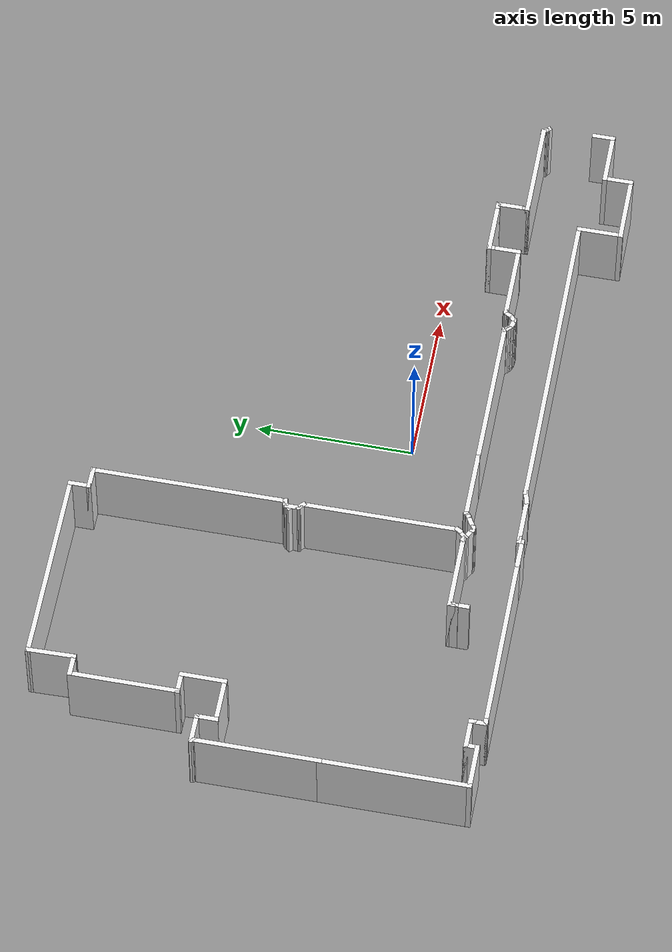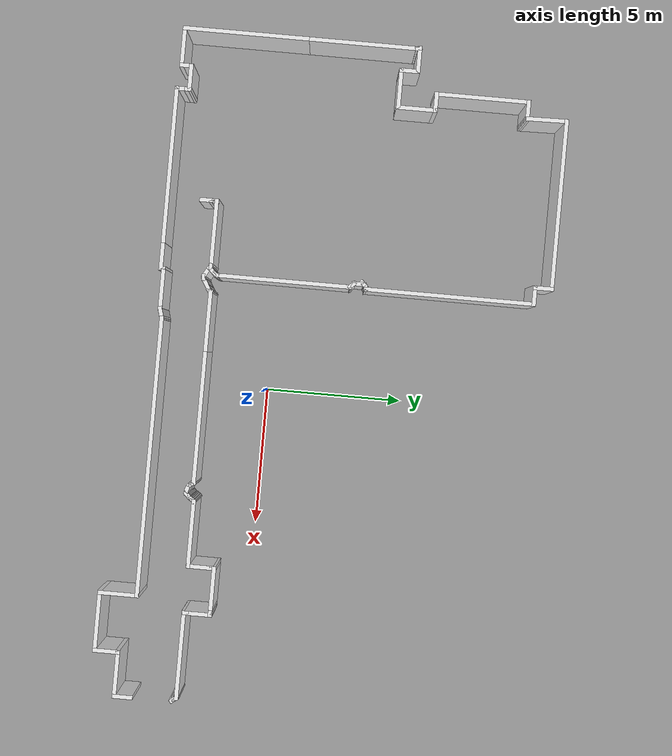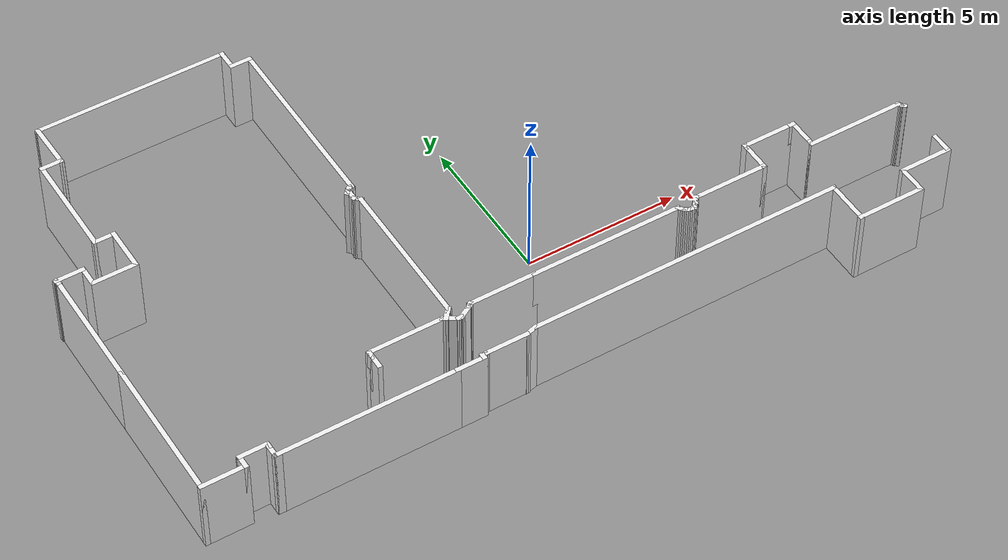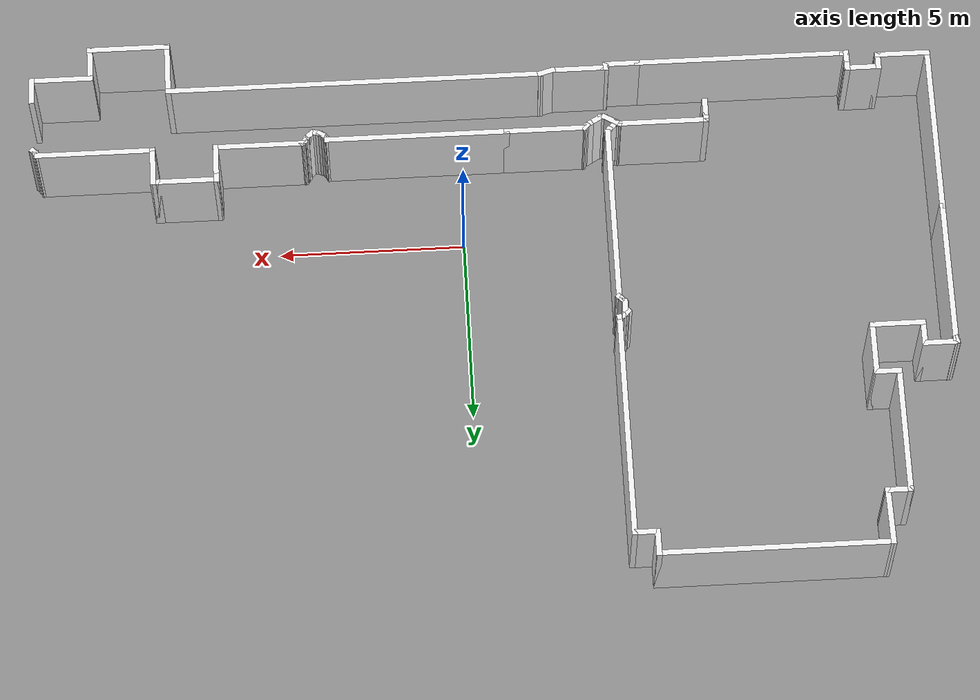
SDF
<sdf version="1.4">
 <model name="south_basement">
  <pose>12.3228 0.447268 0 0 -0 0</pose>
  <link name="Wall_1">
   <collision name="Wall_1_Collision">
    <geometry><box><size>6.25 0.15 2.5</size></box></geometry>
    <pose>0 0 1.25 0 -0 0</pose>
   </collision>
   <visual name="Wall_1_Visual">
    <pose>0 0 1.25 0 -0 0</pose>
    <geometry><box><size>6.25 0.15 2.5</size></box></geometry>
    <material>
     <script><uri>file://media/materials/scripts/gazebo.material</uri><name>Gazebo/White</name></script>
     <ambient>1 1 1 1</ambient>
    </material>
   </visual>
   <pose>-19.9496 9.58415 0 0 -0 0</pose>
  </link>
  <link name="Wall_10">
   <collision name="Wall_10_Collision">
    <geometry><box><size>0.25 0.15 2.5</size></box></geometry>
    <pose>0 0 1.25 0 -0 0</pose>
   </collision>
   <visual name="Wall_10_Visual">
    <pose>0 0 1.25 0 -0 0</pose>
    <geometry><box><size>0.25 0.15 2.5</size></box></geometry>
    <material>
     <script><uri>file://media/materials/scripts/gazebo.material</uri><name>Gazebo/White</name></script>
     <ambient>1 1 1 1</ambient>
    </material>
   </visual>
   <pose>-16.4315 2.82291 0 0 0 -2.35619</pose>
  </link>
  <link name="Wall_11">
   <collision name="Wall_11_Collision">
    <geometry><box><size>0.25 0.15 2.5</size></box></geometry>
    <pose>0 0 1.25 0 -0 0</pose>
   </collision>
   <visual name="Wall_11_Visual">
    <pose>0 0 1.25 0 -0 0</pose>
    <geometry><box><size>0.25 0.15 2.5</size></box></geometry>
    <material>
     <script><uri>file://media/materials/scripts/gazebo.material</uri><name>Gazebo/White</name></script>
     <ambient>1 1 1 1</ambient>
    </material>
   </visual>
   <pose>-16.5022 2.7522 0 0 0 -2.35619</pose>
  </link>
  <link name="Wall_14">
   <collision name="Wall_14_Collision">
    <geometry><box><size>0.5 0.15 2.5</size></box></geometry>
    <pose>0 0 1.25 0 -0 0</pose>
   </collision>
   <visual name="Wall_14_Visual">
    <pose>0 0 1.25 0 -0 0</pose>
    <geometry><box><size>0.5 0.15 2.5</size></box></geometry>
    <material>
     <script><uri>file://media/materials/scripts/gazebo.material</uri><name>Gazebo/White</name></script>
     <ambient>1 1 1 1</ambient>
    </material>
   </visual>
   <pose>-16.4669 2.61255 0 0 0 -1.5708</pose>
  </link>
  <link name="Wall_149">
   <collision name="Wall_149_Collision">
    <geometry><box><size>0.75 0.15 2.5</size></box></geometry>
    <pose>0 0 1.25 0 -0 0</pose>
   </collision>
   <visual name="Wall_149_Visual">
    <pose>0 0 1.25 0 -0 0</pose>
    <geometry><box><size>0.75 0.15 2.5</size></box></geometry>
    <material>
     <script><uri>file://media/materials/scripts/gazebo.material</uri><name>Gazebo/White</name></script>
     <ambient>1 1 1 1</ambient>
    </material>
   </visual>
   <pose>-0.806367 -4.60052 0 0 0 -1.5708</pose>
  </link>
  <link name="Wall_15">
   <collision name="Wall_15_Collision">
    <geometry><box><size>0.25 0.15 2.5</size></box></geometry>
    <pose>0 0 1.25 0 -0 0</pose>
   </collision>
   <visual name="Wall_15_Visual">
    <pose>0 0 1.25 0 -0 0</pose>
    <geometry><box><size>0.25 0.15 2.5</size></box></geometry>
    <material>
     <script><uri>file://media/materials/scripts/gazebo.material</uri><name>Gazebo/White</name></script>
     <ambient>1 1 1 1</ambient>
    </material>
   </visual>
   <pose>-16.4315 2.4022 0 0 0 -0.785398</pose>
  </link>
  <link name="Wall_150">
   <collision name="Wall_150_Collision">
    <geometry><box><size>1.75 0.15 2.5</size></box></geometry>
    <pose>0 0 1.25 0 -0 0</pose>
   </collision>
   <visual name="Wall_150_Visual">
    <pose>0 0 1.25 0 -0 0</pose>
    <geometry><box><size>1.75 0.15 2.5</size></box></geometry>
    <material>
     <script><uri>file://media/materials/scripts/gazebo.material</uri><name>Gazebo/White</name></script>
     <ambient>1 1 1 1</ambient>
    </material>
   </visual>
   <pose>-1.60637 -4.90052 0 0 -0 3.14159</pose>
  </link>
  <link name="Wall_151">
   <collision name="Wall_151_Collision">
    <geometry><box><size>1 0.15 2.5</size></box></geometry>
    <pose>0 0 1.25 0 -0 0</pose>
   </collision>
   <visual name="Wall_151_Visual">
    <pose>0 0 1.25 0 -0 0</pose>
    <geometry><box><size>1 0.15 2.5</size></box></geometry>
    <material>
     <script><uri>file://media/materials/scripts/gazebo.material</uri><name>Gazebo/White</name></script>
     <ambient>1 1 1 1</ambient>
    </material>
   </visual>
   <pose>-2.40637 -5.32552 0 0 0 -1.5708</pose>
  </link>
  <link name="Wall_152">
   <collision name="Wall_152_Collision">
    <geometry><box><size>2.25 0.15 2.5</size></box></geometry>
    <pose>0 0 1.25 0 -0 0</pose>
   </collision>
   <visual name="Wall_152_Visual">
    <pose>0 0 1.25 0 -0 0</pose>
    <geometry><box><size>2.25 0.15 2.5</size></box></geometry>
    <material>
     <script><uri>file://media/materials/scripts/gazebo.material</uri><name>Gazebo/White</name></script>
     <ambient>1 1 1 1</ambient>
    </material>
   </visual>
   <pose>-3.45637 -5.75052 0 0 -0 3.14159</pose>
  </link>
  <link name="Wall_153">
   <collision name="Wall_153_Collision">
    <geometry><box><size>1.5 0.15 2.5</size></box></geometry>
    <pose>0 0 1.25 0 -0 0</pose>
   </collision>
   <visual name="Wall_153_Visual">
    <pose>0 0 1.25 0 -0 0</pose>
    <geometry><box><size>1.5 0.15 2.5</size></box></geometry>
    <material>
     <script><uri>file://media/materials/scripts/gazebo.material</uri><name>Gazebo/White</name></script>
     <ambient>1 1 1 1</ambient>
    </material>
   </visual>
   <pose>-4.50637 -5.07552 0 0 -0 1.5708</pose>
  </link>
  <link name="Wall_155">
   <collision name="Wall_155_Collision">
    <geometry><box><size>10.25 0.15 2.5</size></box></geometry>
    <pose>0 0 1.25 0 -0 0</pose>
   </collision>
   <visual name="Wall_155_Visual">
    <pose>0 0 1.25 0 -0 0</pose>
    <geometry><box><size>10.25 0.15 2.5</size></box></geometry>
    <material>
     <script><uri>file://media/materials/scripts/gazebo.material</uri><name>Gazebo/White</name></script>
     <ambient>1 1 1 1</ambient>
    </material>
   </visual>
   <pose>-9.55637 -4.40052 0 0 -0 3.14159</pose>
  </link>
  <link name="Wall_156">
   <collision name="Wall_156_Collision">
    <geometry><box><size>0.5 0.15 2.5</size></box></geometry>
    <pose>0 0 1.25 0 -0 0</pose>
   </collision>
   <visual name="Wall_156_Visual">
    <pose>0 0 1.25 0 -0 0</pose>
    <geometry><box><size>0.5 0.15 2.5</size></box></geometry>
    <material>
     <script><uri>file://media/materials/scripts/gazebo.material</uri><name>Gazebo/White</name></script>
     <ambient>1 1 1 1</ambient>
    </material>
   </visual>
   <pose>-14.7754 -4.44582 0 0 0 -2.87979</pose>
  </link>
  <link name="Wall_157">
   <collision name="Wall_157_Collision">
    <geometry><box><size>1.5 0.15 2.5</size></box></geometry>
    <pose>0 0 1.25 0 -0 0</pose>
   </collision>
   <visual name="Wall_157_Visual">
    <pose>0 0 1.25 0 -0 0</pose>
    <geometry><box><size>1.5 0.15 2.5</size></box></geometry>
    <material>
     <script><uri>file://media/materials/scripts/gazebo.material</uri><name>Gazebo/White</name></script>
     <ambient>1 1 1 1</ambient>
    </material>
   </visual>
   <pose>-15.6194 -4.49111 0 0 -0 3.14159</pose>
  </link>
  <link name="Wall_158">
   <collision name="Wall_158_Collision">
    <geometry><box><size>0.25 0.15 2.5</size></box></geometry>
    <pose>0 0 1.25 0 -0 0</pose>
   </collision>
   <visual name="Wall_158_Visual">
    <pose>0 0 1.25 0 -0 0</pose>
    <geometry><box><size>0.25 0.15 2.5</size></box></geometry>
    <material>
     <script><uri>file://media/materials/scripts/gazebo.material</uri><name>Gazebo/White</name></script>
     <ambient>1 1 1 1</ambient>
    </material>
   </visual>
   <pose>-16.3444 -4.49111 0 0 -0 3.14159</pose>
  </link>
  <link name="Wall_159">
   <collision name="Wall_159_Collision">
    <geometry><box><size>0.25 0.15 2.5</size></box></geometry>
    <pose>0 0 1.25 0 -0 0</pose>
   </collision>
   <visual name="Wall_159_Visual">
    <pose>0 0 1.25 0 -0 0</pose>
    <geometry><box><size>0.25 0.15 2.5</size></box></geometry>
    <material>
     <script><uri>file://media/materials/scripts/gazebo.material</uri><name>Gazebo/White</name></script>
     <ambient>1 1 1 1</ambient>
    </material>
   </visual>
   <pose>-16.3944 -4.54111 0 0 0 -1.5708</pose>
  </link>
  <link name="Wall_16">
   <collision name="Wall_16_Collision">
    <geometry><box><size>0.25 0.15 2.5</size></box></geometry>
    <pose>0 0 1.25 0 -0 0</pose>
   </collision>
   <visual name="Wall_16_Visual">
    <pose>0 0 1.25 0 -0 0</pose>
    <geometry><box><size>0.25 0.15 2.5</size></box></geometry>
    <material>
     <script><uri>file://media/materials/scripts/gazebo.material</uri><name>Gazebo/White</name></script>
     <ambient>1 1 1 1</ambient>
    </material>
   </visual>
   <pose>-16.3608 2.33149 0 0 0 -0.785398</pose>
  </link>
  <link name="Wall_160">
   <collision name="Wall_160_Collision">
    <geometry><box><size>1 0.15 2.5</size></box></geometry>
    <pose>0 0 1.25 0 -0 0</pose>
   </collision>
   <visual name="Wall_160_Visual">
    <pose>0 0 1.25 0 -0 0</pose>
    <geometry><box><size>1 0.15 2.5</size></box></geometry>
    <material>
     <script><uri>file://media/materials/scripts/gazebo.material</uri><name>Gazebo/White</name></script>
     <ambient>1 1 1 1</ambient>
    </material>
   </visual>
   <pose>-16.8194 -4.59111 0 0 -0 3.14159</pose>
  </link>
  <link name="Wall_161">
   <collision name="Wall_161_Collision">
    <geometry><box><size>5.75 0.15 2.5</size></box></geometry>
    <pose>0 0 1.25 0 -0 0</pose>
   </collision>
   <visual name="Wall_161_Visual">
    <pose>0 0 1.25 0 -0 0</pose>
    <geometry><box><size>5.75 0.15 2.5</size></box></geometry>
    <material>
     <script><uri>file://media/materials/scripts/gazebo.material</uri><name>Gazebo/White</name></script>
     <ambient>1 1 1 1</ambient>
    </material>
   </visual>
   <pose>-20.0444 -4.59111 0 0 -0 3.14159</pose>
  </link>
  <link name="Wall_163">
   <collision name="Wall_163_Collision">
    <geometry><box><size>0.25 0.15 2.5</size></box></geometry>
    <pose>0 0 1.25 0 -0 0</pose>
   </collision>
   <visual name="Wall_163_Visual">
    <pose>0 0 1.25 0 -0 0</pose>
    <geometry><box><size>0.25 0.15 2.5</size></box></geometry>
    <material>
     <script><uri>file://media/materials/scripts/gazebo.material</uri><name>Gazebo/White</name></script>
     <ambient>1 1 1 1</ambient>
    </material>
   </visual>
   <pose>-22.8944 -4.59111 0 0 -0 3.14159</pose>
  </link>
  <link name="Wall_164">
   <collision name="Wall_164_Collision">
    <geometry><box><size>0.5 0.15 2.5</size></box></geometry>
    <pose>0 0 1.25 0 -0 0</pose>
   </collision>
   <visual name="Wall_164_Visual">
    <pose>0 0 1.25 0 -0 0</pose>
    <geometry><box><size>0.5 0.15 2.5</size></box></geometry>
    <material>
     <script><uri>file://media/materials/scripts/gazebo.material</uri><name>Gazebo/White</name></script>
     <ambient>1 1 1 1</ambient>
    </material>
   </visual>
   <pose>-22.9444 -4.41611 0 0 -0 1.5708</pose>
  </link>
  <link name="Wall_165">
   <collision name="Wall_165_Collision">
    <geometry><box><size>0.25 0.15 2.5</size></box></geometry>
    <pose>0 0 1.25 0 -0 0</pose>
   </collision>
   <visual name="Wall_165_Visual">
    <pose>0 0 1.25 0 -0 0</pose>
    <geometry><box><size>0.25 0.15 2.5</size></box></geometry>
    <material>
     <script><uri>file://media/materials/scripts/gazebo.material</uri><name>Gazebo/White</name></script>
     <ambient>1 1 1 1</ambient>
    </material>
   </visual>
   <pose>-22.9444 -4.19111 0 0 -0 1.5708</pose>
  </link>
  <link name="Wall_166">
   <collision name="Wall_166_Collision">
    <geometry><box><size>1 0.15 2.5</size></box></geometry>
    <pose>0 0 1.25 0 -0 0</pose>
   </collision>
   <visual name="Wall_166_Visual">
    <pose>0 0 1.25 0 -0 0</pose>
    <geometry><box><size>1 0.15 2.5</size></box></geometry>
    <material>
     <script><uri>file://media/materials/scripts/gazebo.material</uri><name>Gazebo/White</name></script>
     <ambient>1 1 1 1</ambient>
    </material>
   </visual>
   <pose>-23.3694 -4.14111 0 0 -0 3.14159</pose>
  </link>
  <link name="Wall_167">
   <collision name="Wall_167_Collision">
    <geometry><box><size>0.5 0.15 2.5</size></box></geometry>
    <pose>0 0 1.25 0 -0 0</pose>
   </collision>
   <visual name="Wall_167_Visual">
    <pose>0 0 1.25 0 -0 0</pose>
    <geometry><box><size>0.5 0.15 2.5</size></box></geometry>
    <material>
     <script><uri>file://media/materials/scripts/gazebo.material</uri><name>Gazebo/White</name></script>
     <ambient>1 1 1 1</ambient>
    </material>
   </visual>
   <pose>-23.7944 -4.31611 0 0 0 -1.5708</pose>
  </link>
  <link name="Wall_168">
   <collision name="Wall_168_Collision">
    <geometry><box><size>1.5 0.15 2.5</size></box></geometry>
    <pose>0 0 1.25 0 -0 0</pose>
   </collision>
   <visual name="Wall_168_Visual">
    <pose>0 0 1.25 0 -0 0</pose>
    <geometry><box><size>1.5 0.15 2.5</size></box></geometry>
    <material>
     <script><uri>file://media/materials/scripts/gazebo.material</uri><name>Gazebo/White</name></script>
     <ambient>1 1 1 1</ambient>
    </material>
   </visual>
   <pose>-24.4694 -4.49111 0 0 -0 3.14159</pose>
  </link>
  <link name="Wall_169">
   <collision name="Wall_169_Collision">
    <geometry><box><size>4.75 0.15 2.5</size></box></geometry>
    <pose>0 0 1.25 0 -0 0</pose>
   </collision>
   <visual name="Wall_169_Visual">
    <pose>0 0 1.25 0 -0 0</pose>
    <geometry><box><size>4.75 0.15 2.5</size></box></geometry>
    <material>
     <script><uri>file://media/materials/scripts/gazebo.material</uri><name>Gazebo/White</name></script>
     <ambient>1 1 1 1</ambient>
    </material>
   </visual>
   <pose>-25.1444 -2.19111 0 0 -0 1.5708</pose>
  </link>
  <link name="Wall_17">
   <collision name="Wall_17_Collision">
    <geometry><box><size>5 0.15 2.5</size></box></geometry>
    <pose>0 0 1.25 0 -0 0</pose>
   </collision>
   <visual name="Wall_17_Visual">
    <pose>0 0 1.25 0 -0 0</pose>
    <geometry><box><size>5 0.15 2.5</size></box></geometry>
    <material>
     <script><uri>file://media/materials/scripts/gazebo.material</uri><name>Gazebo/White</name></script>
     <ambient>1 1 1 1</ambient>
    </material>
   </visual>
   <pose>-16.3255 -0.128869 0 0 0 -1.5708</pose>
  </link>
  <link name="Wall_171">
   <collision name="Wall_171_Collision">
    <geometry><box><size>4 0.15 2.5</size></box></geometry>
    <pose>0 0 1.25 0 -0 0</pose>
   </collision>
   <visual name="Wall_171_Visual">
    <pose>0 0 1.25 0 -0 0</pose>
    <geometry><box><size>4 0.15 2.5</size></box></geometry>
    <material>
     <script><uri>file://media/materials/scripts/gazebo.material</uri><name>Gazebo/White</name></script>
     <ambient>1 1 1 1</ambient>
    </material>
   </visual>
   <pose>-25.1444 2.03389 0 0 -0 1.5708</pose>
  </link>
  <link name="Wall_172">
   <collision name="Wall_172_Collision">
    <geometry><box><size>0.25 0.15 2.5</size></box></geometry>
    <pose>0 0 1.25 0 -0 0</pose>
   </collision>
   <visual name="Wall_172_Visual">
    <pose>0 0 1.25 0 -0 0</pose>
    <geometry><box><size>0.25 0.15 2.5</size></box></geometry>
    <material>
     <script><uri>file://media/materials/scripts/gazebo.material</uri><name>Gazebo/White</name></script>
     <ambient>1 1 1 1</ambient>
    </material>
   </visual>
   <pose>-25.1574 4.00718 0 0 -0 1.8326</pose>
  </link>
  <link name="Wall_173">
   <collision name="Wall_173_Collision">
    <geometry><box><size>1 0.15 2.5</size></box></geometry>
    <pose>0 0 1.25 0 -0 0</pose>
   </collision>
   <visual name="Wall_173_Visual">
    <pose>0 0 1.25 0 -0 0</pose>
    <geometry><box><size>1 0.15 2.5</size></box></geometry>
    <material>
     <script><uri>file://media/materials/scripts/gazebo.material</uri><name>Gazebo/White</name></script>
     <ambient>1 1 1 1</ambient>
    </material>
   </visual>
   <pose>-24.7453 4.05548 0 0 -0 0</pose>
  </link>
  <link name="Wall_174">
   <collision name="Wall_174_Collision">
    <geometry><box><size>0.75 0.15 2.5</size></box></geometry>
    <pose>0 0 1.25 0 -0 0</pose>
   </collision>
   <visual name="Wall_174_Visual">
    <pose>0 0 1.25 0 -0 0</pose>
    <geometry><box><size>0.75 0.15 2.5</size></box></geometry>
    <material>
     <script><uri>file://media/materials/scripts/gazebo.material</uri><name>Gazebo/White</name></script>
     <ambient>1 1 1 1</ambient>
    </material>
   </visual>
   <pose>-24.3203 3.75548 0 0 0 -1.5708</pose>
  </link>
  <link name="Wall_175">
   <collision name="Wall_175_Collision">
    <geometry><box><size>1.5 0.15 2.5</size></box></geometry>
    <pose>0 0 1.25 0 -0 0</pose>
   </collision>
   <visual name="Wall_175_Visual">
    <pose>0 0 1.25 0 -0 0</pose>
    <geometry><box><size>1.5 0.15 2.5</size></box></geometry>
    <material>
     <script><uri>file://media/materials/scripts/gazebo.material</uri><name>Gazebo/White</name></script>
     <ambient>1 1 1 1</ambient>
    </material>
   </visual>
   <pose>-23.6453 3.45548 0 0 -0 0</pose>
  </link>
  <link name="Wall_176">
   <collision name="Wall_176_Collision">
    <geometry><box><size>1.5 0.15 2.5</size></box></geometry>
    <pose>0 0 1.25 0 -0 0</pose>
   </collision>
   <visual name="Wall_176_Visual">
    <pose>0 0 1.25 0 -0 0</pose>
    <geometry><box><size>1.5 0.15 2.5</size></box></geometry>
    <material>
     <script><uri>file://media/materials/scripts/gazebo.material</uri><name>Gazebo/White</name></script>
     <ambient>1 1 1 1</ambient>
    </material>
   </visual>
   <pose>-22.9703 4.13048 0 0 -0 1.5708</pose>
  </link>
  <link name="Wall_177">
   <collision name="Wall_177_Collision">
    <geometry><box><size>0.75 0.15 2.5</size></box></geometry>
    <pose>0 0 1.25 0 -0 0</pose>
   </collision>
   <visual name="Wall_177_Visual">
    <pose>0 0 1.25 0 -0 0</pose>
    <geometry><box><size>0.75 0.15 2.5</size></box></geometry>
    <material>
     <script><uri>file://media/materials/scripts/gazebo.material</uri><name>Gazebo/White</name></script>
     <ambient>1 1 1 1</ambient>
    </material>
   </visual>
   <pose>-23.2703 4.80548 0 0 -0 3.14159</pose>
  </link>
  <link name="Wall_178">
   <collision name="Wall_178_Collision">
    <geometry><box><size>3.5 0.15 2.5</size></box></geometry>
    <pose>0 0 1.25 0 -0 0</pose>
   </collision>
   <visual name="Wall_178_Visual">
    <pose>0 0 1.25 0 -0 0</pose>
    <geometry><box><size>3.5 0.15 2.5</size></box></geometry>
    <material>
     <script><uri>file://media/materials/scripts/gazebo.material</uri><name>Gazebo/White</name></script>
     <ambient>1 1 1 1</ambient>
    </material>
   </visual>
   <pose>-23.5703 6.48048 0 0 -0 1.5708</pose>
  </link>
  <link name="Wall_179">
   <collision name="Wall_179_Collision">
    <geometry><box><size>0.75 0.15 2.5</size></box></geometry>
    <pose>0 0 1.25 0 -0 0</pose>
   </collision>
   <visual name="Wall_179_Visual">
    <pose>0 0 1.25 0 -0 0</pose>
    <geometry><box><size>0.75 0.15 2.5</size></box></geometry>
    <material>
     <script><uri>file://media/materials/scripts/gazebo.material</uri><name>Gazebo/White</name></script>
     <ambient>1 1 1 1</ambient>
    </material>
   </visual>
   <pose>-23.2703 8.15548 0 0 -0 0</pose>
  </link>
  <link name="Wall_18">
   <collision name="Wall_18_Collision">
    <geometry><box><size>0.25 0.15 2.5</size></box></geometry>
    <pose>0 0 1.25 0 -0 0</pose>
   </collision>
   <visual name="Wall_18_Visual">
    <pose>0 0 1.25 0 -0 0</pose>
    <geometry><box><size>0.25 0.15 2.5</size></box></geometry>
    <material>
     <script><uri>file://media/materials/scripts/gazebo.material</uri><name>Gazebo/White</name></script>
     <ambient>1 1 1 1</ambient>
    </material>
   </visual>
   <pose>-16.3505 -2.59717 0 0 0 -2.0944</pose>
  </link>
  <link name="Wall_180">
   <collision name="Wall_180_Collision">
    <geometry><box><size>1.57896 0.15 2.5</size></box></geometry>
    <pose>0 0 1.25 0 -0 0</pose>
   </collision>
   <visual name="Wall_180_Visual">
    <pose>0 0 1.25 0 -0 0</pose>
    <geometry><box><size>1.57896 0.15 2.5</size></box></geometry>
    <material>
     <script><uri>file://media/materials/scripts/gazebo.material</uri><name>Gazebo/White</name></script>
     <ambient>1 1 1 1</ambient>
    </material>
   </visual>
   <pose>-22.985 8.86981 0 0 -0 1.59127</pose>
  </link>
  <link name="Wall_21">
   <collision name="Wall_21_Collision">
    <geometry><box><size>0.5 0.15 2.5</size></box></geometry>
    <pose>0 0 1.25 0 -0 0</pose>
   </collision>
   <visual name="Wall_21_Visual">
    <pose>0 0 1.25 0 -0 0</pose>
    <geometry><box><size>0.5 0.15 2.5</size></box></geometry>
    <material>
     <script><uri>file://media/materials/scripts/gazebo.material</uri><name>Gazebo/White</name></script>
     <ambient>1 1 1 1</ambient>
    </material>
   </visual>
   <pose>-19.0045 -3.16294 0 0 -0 1.5708</pose>
  </link>
  <link name="Wall_22">
   <collision name="Wall_22_Collision">
    <geometry><box><size>0.15 0.15 2.5</size></box></geometry>
    <pose>0 0 1.25 0 -0 0</pose>
   </collision>
   <visual name="Wall_22_Visual">
    <pose>0 0 1.25 0 -0 0</pose>
    <geometry><box><size>0.15 0.15 2.5</size></box></geometry>
    <material>
     <script><uri>file://media/materials/scripts/gazebo.material</uri><name>Gazebo/White</name></script>
     <ambient>1 1 1 1</ambient>
    </material>
   </visual>
   <pose>-19.0045 -2.98794 0 0 -0 0</pose>
  </link>
  <link name="Wall_23">
   <collision name="Wall_23_Collision">
    <geometry><box><size>0.15 0.15 2.5</size></box></geometry>
    <pose>0 0 1.25 0 -0 0</pose>
   </collision>
   <visual name="Wall_23_Visual">
    <pose>0 0 1.25 0 -0 0</pose>
    <geometry><box><size>0.15 0.15 2.5</size></box></geometry>
    <material>
     <script><uri>file://media/materials/scripts/gazebo.material</uri><name>Gazebo/White</name></script>
     <ambient>1 1 1 1</ambient>
    </material>
   </visual>
   <pose>-19.0045 -2.98794 0 0 -0 0</pose>
  </link>
  <link name="Wall_24">
   <collision name="Wall_24_Collision">
    <geometry><box><size>0.15 0.15 2.5</size></box></geometry>
    <pose>0 0 1.25 0 -0 0</pose>
   </collision>
   <visual name="Wall_24_Visual">
    <pose>0 0 1.25 0 -0 0</pose>
    <geometry><box><size>0.15 0.15 2.5</size></box></geometry>
    <material>
     <script><uri>file://media/materials/scripts/gazebo.material</uri><name>Gazebo/White</name></script>
     <ambient>1 1 1 1</ambient>
    </material>
   </visual>
   <pose>-19.0045 -2.98794 0 0 -0 0</pose>
  </link>
  <link name="Wall_25">
   <collision name="Wall_25_Collision">
    <geometry><box><size>0.25 0.15 2.5</size></box></geometry>
    <pose>0 0 1.25 0 -0 0</pose>
   </collision>
   <visual name="Wall_25_Visual">
    <pose>0 0 1.25 0 -0 0</pose>
    <geometry><box><size>0.25 0.15 2.5</size></box></geometry>
    <material>
     <script><uri>file://media/materials/scripts/gazebo.material</uri><name>Gazebo/White</name></script>
     <ambient>1 1 1 1</ambient>
    </material>
   </visual>
   <pose>-19.0045 -2.93794 0 0 -0 1.5708</pose>
  </link>
  <link name="Wall_26">
   <collision name="Wall_26_Collision">
    <geometry><box><size>0.25 0.15 2.5</size></box></geometry>
    <pose>0 0 1.25 0 -0 0</pose>
   </collision>
   <visual name="Wall_26_Visual">
    <pose>0 0 1.25 0 -0 0</pose>
    <geometry><box><size>0.25 0.15 2.5</size></box></geometry>
    <material>
     <script><uri>file://media/materials/scripts/gazebo.material</uri><name>Gazebo/White</name></script>
     <ambient>1 1 1 1</ambient>
    </material>
   </visual>
   <pose>-19.0045 -2.83794 0 0 -0 1.5708</pose>
  </link>
  <link name="Wall_27">
   <collision name="Wall_27_Collision">
    <geometry><box><size>2.5 0.15 2.5</size></box></geometry>
    <pose>0 0 1.25 0 -0 0</pose>
   </collision>
   <visual name="Wall_27_Visual">
    <pose>0 0 1.25 0 -0 0</pose>
    <geometry><box><size>2.5 0.15 2.5</size></box></geometry>
    <material>
     <script><uri>file://media/materials/scripts/gazebo.material</uri><name>Gazebo/White</name></script>
     <ambient>1 1 1 1</ambient>
    </material>
   </visual>
   <pose>-17.8295 -2.78794 0 0 -0 0</pose>
  </link>
  <link name="Wall_28">
   <collision name="Wall_28_Collision">
    <geometry><box><size>0.25 0.15 2.5</size></box></geometry>
    <pose>0 0 1.25 0 -0 0</pose>
   </collision>
   <visual name="Wall_28_Visual">
    <pose>0 0 1.25 0 -0 0</pose>
    <geometry><box><size>0.25 0.15 2.5</size></box></geometry>
    <material>
     <script><uri>file://media/materials/scripts/gazebo.material</uri><name>Gazebo/White</name></script>
     <ambient>1 1 1 1</ambient>
    </material>
   </visual>
   <pose>-16.6112 -2.81294 0 0 0 -0.523599</pose>
  </link>
  <link name="Wall_29">
   <collision name="Wall_29_Collision">
    <geometry><box><size>0.523456 0.15 2.5</size></box></geometry>
    <pose>0 0 1.25 0 -0 0</pose>
   </collision>
   <visual name="Wall_29_Visual">
    <pose>0 0 1.25 0 -0 0</pose>
    <geometry><box><size>0.523456 0.15 2.5</size></box></geometry>
    <material>
     <script><uri>file://media/materials/scripts/gazebo.material</uri><name>Gazebo/White</name></script>
     <ambient>1 1 1 1</ambient>
    </material>
   </visual>
   <pose>-16.4467 -2.6959 0 0 -0 0.864314</pose>
  </link>
  <link name="Wall_31">
   <collision name="Wall_31_Collision">
    <geometry><box><size>0.5 0.15 2.5</size></box></geometry>
    <pose>0 0 1.25 0 -0 0</pose>
   </collision>
   <visual name="Wall_31_Visual">
    <pose>0 0 1.25 0 -0 0</pose>
    <geometry><box><size>0.5 0.15 2.5</size></box></geometry>
    <material>
     <script><uri>file://media/materials/scripts/gazebo.material</uri><name>Gazebo/White</name></script>
     <ambient>1 1 1 1</ambient>
    </material>
   </visual>
   <pose>-16.4163 -2.92544 0 0 0 -0.523599</pose>
  </link>
  <link name="Wall_32">
   <collision name="Wall_32_Collision">
    <geometry><box><size>0.25 0.15 2.5</size></box></geometry>
    <pose>0 0 1.25 0 -0 0</pose>
   </collision>
   <visual name="Wall_32_Visual">
    <pose>0 0 1.25 0 -0 0</pose>
    <geometry><box><size>0.25 0.15 2.5</size></box></geometry>
    <material>
     <script><uri>file://media/materials/scripts/gazebo.material</uri><name>Gazebo/White</name></script>
     <ambient>1 1 1 1</ambient>
    </material>
   </visual>
   <pose>-16.2148 -3.01294 0 0 -0 0</pose>
  </link>
  <link name="Wall_33">
   <collision name="Wall_33_Collision">
    <geometry><box><size>0.5 0.15 2.5</size></box></geometry>
    <pose>0 0 1.25 0 -0 0</pose>
   </collision>
   <visual name="Wall_33_Visual">
    <pose>0 0 1.25 0 -0 0</pose>
    <geometry><box><size>0.5 0.15 2.5</size></box></geometry>
    <material>
     <script><uri>file://media/materials/scripts/gazebo.material</uri><name>Gazebo/White</name></script>
     <ambient>1 1 1 1</ambient>
    </material>
   </visual>
   <pose>-16.0132 -2.92544 0 0 -0 0.523599</pose>
  </link>
  <link name="Wall_34">
   <collision name="Wall_34_Collision">
    <geometry><box><size>0.25 0.15 2.5</size></box></geometry>
    <pose>0 0 1.25 0 -0 0</pose>
   </collision>
   <visual name="Wall_34_Visual">
    <pose>0 0 1.25 0 -0 0</pose>
    <geometry><box><size>0.25 0.15 2.5</size></box></geometry>
    <material>
     <script><uri>file://media/materials/scripts/gazebo.material</uri><name>Gazebo/White</name></script>
     <ambient>1 1 1 1</ambient>
    </material>
   </visual>
   <pose>-15.8184 -2.81294 0 0 -0 0.523599</pose>
  </link>
  <link name="Wall_35">
   <collision name="Wall_35_Collision">
    <geometry><box><size>0.25 0.15 2.5</size></box></geometry>
    <pose>0 0 1.25 0 -0 0</pose>
   </collision>
   <visual name="Wall_35_Visual">
    <pose>0 0 1.25 0 -0 0</pose>
    <geometry><box><size>0.25 0.15 2.5</size></box></geometry>
    <material>
     <script><uri>file://media/materials/scripts/gazebo.material</uri><name>Gazebo/White</name></script>
     <ambient>1 1 1 1</ambient>
    </material>
   </visual>
   <pose>-15.7397 -2.75258 0 0 -0 0.785398</pose>
  </link>
  <link name="Wall_36">
   <collision name="Wall_36_Collision">
    <geometry><box><size>2.25 0.15 2.5</size></box></geometry>
    <pose>0 0 1.25 0 -0 0</pose>
   </collision>
   <visual name="Wall_36_Visual">
    <pose>0 0 1.25 0 -0 0</pose>
    <geometry><box><size>2.25 0.15 2.5</size></box></geometry>
    <material>
     <script><uri>file://media/materials/scripts/gazebo.material</uri><name>Gazebo/White</name></script>
     <ambient>1 1 1 1</ambient>
    </material>
   </visual>
   <pose>-14.6544 -2.71723 0 0 -0 0</pose>
  </link>
  <link name="Wall_37">
   <collision name="Wall_37_Collision">
    <geometry><box><size>5 0.15 2.5</size></box></geometry>
    <pose>0 0 1.25 0 -0 0</pose>
   </collision>
   <visual name="Wall_37_Visual">
    <pose>0 0 1.25 0 -0 0</pose>
    <geometry><box><size>5 0.15 2.5</size></box></geometry>
    <material>
     <script><uri>file://media/materials/scripts/gazebo.material</uri><name>Gazebo/White</name></script>
     <ambient>1 1 1 1</ambient>
    </material>
   </visual>
   <pose>-11.1794 -2.71723 0 0 -0 0</pose>
  </link>
  <link name="Wall_38">
   <collision name="Wall_38_Collision">
    <geometry><box><size>0.25 0.15 2.5</size></box></geometry>
    <pose>0 0 1.25 0 -0 0</pose>
   </collision>
   <visual name="Wall_38_Visual">
    <pose>0 0 1.25 0 -0 0</pose>
    <geometry><box><size>0.25 0.15 2.5</size></box></geometry>
    <material>
     <script><uri>file://media/materials/scripts/gazebo.material</uri><name>Gazebo/White</name></script>
     <ambient>1 1 1 1</ambient>
    </material>
   </visual>
   <pose>-8.72936 -2.76053 0 0 0 -1.0472</pose>
  </link>
  <link name="Wall_39">
   <collision name="Wall_39_Collision">
    <geometry><box><size>0.25 0.15 2.5</size></box></geometry>
    <pose>0 0 1.25 0 -0 0</pose>
   </collision>
   <visual name="Wall_39_Visual">
    <pose>0 0 1.25 0 -0 0</pose>
    <geometry><box><size>0.25 0.15 2.5</size></box></geometry>
    <material>
     <script><uri>file://media/materials/scripts/gazebo.material</uri><name>Gazebo/White</name></script>
     <ambient>1 1 1 1</ambient>
    </material>
   </visual>
   <pose>-8.66901 -2.83919 0 0 0 -0.785398</pose>
  </link>
  <link name="Wall_40">
   <collision name="Wall_40_Collision">
    <geometry><box><size>0.25 0.15 2.5</size></box></geometry>
    <pose>0 0 1.25 0 -0 0</pose>
   </collision>
   <visual name="Wall_40_Visual">
    <pose>0 0 1.25 0 -0 0</pose>
    <geometry><box><size>0.25 0.15 2.5</size></box></geometry>
    <material>
     <script><uri>file://media/materials/scripts/gazebo.material</uri><name>Gazebo/White</name></script>
     <ambient>1 1 1 1</ambient>
    </material>
   </visual>
   <pose>-8.59035 -2.89954 0 0 0 -0.523599</pose>
  </link>
  <link name="Wall_41">
   <collision name="Wall_41_Collision">
    <geometry><box><size>0.25 0.15 2.5</size></box></geometry>
    <pose>0 0 1.25 0 -0 0</pose>
   </collision>
   <visual name="Wall_41_Visual">
    <pose>0 0 1.25 0 -0 0</pose>
    <geometry><box><size>0.25 0.15 2.5</size></box></geometry>
    <material>
     <script><uri>file://media/materials/scripts/gazebo.material</uri><name>Gazebo/White</name></script>
     <ambient>1 1 1 1</ambient>
    </material>
   </visual>
   <pose>-8.49875 -2.93748 0 0 0 -0.261799</pose>
  </link>
  <link name="Wall_42">
   <collision name="Wall_42_Collision">
    <geometry><box><size>0.25 0.15 2.5</size></box></geometry>
    <pose>0 0 1.25 0 -0 0</pose>
   </collision>
   <visual name="Wall_42_Visual">
    <pose>0 0 1.25 0 -0 0</pose>
    <geometry><box><size>0.25 0.15 2.5</size></box></geometry>
    <material>
     <script><uri>file://media/materials/scripts/gazebo.material</uri><name>Gazebo/White</name></script>
     <ambient>1 1 1 1</ambient>
    </material>
   </visual>
   <pose>-8.40046 -2.95042 0 0 -0 0</pose>
  </link>
  <link name="Wall_43">
   <collision name="Wall_43_Collision">
    <geometry><box><size>0.25 0.15 2.5</size></box></geometry>
    <pose>0 0 1.25 0 -0 0</pose>
   </collision>
   <visual name="Wall_43_Visual">
    <pose>0 0 1.25 0 -0 0</pose>
    <geometry><box><size>0.25 0.15 2.5</size></box></geometry>
    <material>
     <script><uri>file://media/materials/scripts/gazebo.material</uri><name>Gazebo/White</name></script>
     <ambient>1 1 1 1</ambient>
    </material>
   </visual>
   <pose>-8.3151 -2.91507 0 0 -0 0.785398</pose>
  </link>
  <link name="Wall_44">
   <collision name="Wall_44_Collision">
    <geometry><box><size>0.25 0.15 2.5</size></box></geometry>
    <pose>0 0 1.25 0 -0 0</pose>
   </collision>
   <visual name="Wall_44_Visual">
    <pose>0 0 1.25 0 -0 0</pose>
    <geometry><box><size>0.25 0.15 2.5</size></box></geometry>
    <material>
     <script><uri>file://media/materials/scripts/gazebo.material</uri><name>Gazebo/White</name></script>
     <ambient>1 1 1 1</ambient>
    </material>
   </visual>
   <pose>-8.24439 -2.84436 0 0 -0 0.785398</pose>
  </link>
  <link name="Wall_45">
   <collision name="Wall_45_Collision">
    <geometry><box><size>0.25 0.15 2.5</size></box></geometry>
    <pose>0 0 1.25 0 -0 0</pose>
   </collision>
   <visual name="Wall_45_Visual">
    <pose>0 0 1.25 0 -0 0</pose>
    <geometry><box><size>0.25 0.15 2.5</size></box></geometry>
    <material>
     <script><uri>file://media/materials/scripts/gazebo.material</uri><name>Gazebo/White</name></script>
     <ambient>1 1 1 1</ambient>
    </material>
   </visual>
   <pose>-8.18404 -2.7657 0 0 -0 1.0472</pose>
  </link>
  <link name="Wall_46">
   <collision name="Wall_46_Collision">
    <geometry><box><size>0.25 0.15 2.5</size></box></geometry>
    <pose>0 0 1.25 0 -0 0</pose>
   </collision>
   <visual name="Wall_46_Visual">
    <pose>0 0 1.25 0 -0 0</pose>
    <geometry><box><size>0.25 0.15 2.5</size></box></geometry>
    <material>
     <script><uri>file://media/materials/scripts/gazebo.material</uri><name>Gazebo/White</name></script>
     <ambient>1 1 1 1</ambient>
    </material>
   </visual>
   <pose>-8.12368 -2.68704 0 0 -0 0.785398</pose>
  </link>
  <link name="Wall_47">
   <collision name="Wall_47_Collision">
    <geometry><box><size>2.5 0.15 2.5</size></box></geometry>
    <pose>0 0 1.25 0 -0 0</pose>
   </collision>
   <visual name="Wall_47_Visual">
    <pose>0 0 1.25 0 -0 0</pose>
    <geometry><box><size>2.5 0.15 2.5</size></box></geometry>
    <material>
     <script><uri>file://media/materials/scripts/gazebo.material</uri><name>Gazebo/White</name></script>
     <ambient>1 1 1 1</ambient>
    </material>
   </visual>
   <pose>-6.91333 -2.65169 0 0 -0 0</pose>
  </link>
  <link name="Wall_48">
   <collision name="Wall_48_Collision">
    <geometry><box><size>1 0.15 2.5</size></box></geometry>
    <pose>0 0 1.25 0 -0 0</pose>
   </collision>
   <visual name="Wall_48_Visual">
    <pose>0 0 1.25 0 -0 0</pose>
    <geometry><box><size>1 0.15 2.5</size></box></geometry>
    <material>
     <script><uri>file://media/materials/scripts/gazebo.material</uri><name>Gazebo/White</name></script>
     <ambient>1 1 1 1</ambient>
    </material>
   </visual>
   <pose>-5.73833 -2.22669 0 0 -0 1.5708</pose>
  </link>
  <link name="Wall_49">
   <collision name="Wall_49_Collision">
    <geometry><box><size>0.25 0.15 2.5</size></box></geometry>
    <pose>0 0 1.25 0 -0 0</pose>
   </collision>
   <visual name="Wall_49_Visual">
    <pose>0 0 1.25 0 -0 0</pose>
    <geometry><box><size>0.25 0.15 2.5</size></box></geometry>
    <material>
     <script><uri>file://media/materials/scripts/gazebo.material</uri><name>Gazebo/White</name></script>
     <ambient>1 1 1 1</ambient>
    </material>
   </visual>
   <pose>-5.73833 -1.75169 0 0 -0 1.5708</pose>
  </link>
  <link name="Wall_50">
   <collision name="Wall_50_Collision">
    <geometry><box><size>1.75 0.15 2.5</size></box></geometry>
    <pose>0 0 1.25 0 -0 0</pose>
   </collision>
   <visual name="Wall_50_Visual">
    <pose>0 0 1.25 0 -0 0</pose>
    <geometry><box><size>1.75 0.15 2.5</size></box></geometry>
    <material>
     <script><uri>file://media/materials/scripts/gazebo.material</uri><name>Gazebo/White</name></script>
     <ambient>1 1 1 1</ambient>
    </material>
   </visual>
   <pose>-4.93833 -1.70169 0 0 -0 0</pose>
  </link>
  <link name="Wall_51">
   <collision name="Wall_51_Collision">
    <geometry><box><size>0.25 0.15 2.5</size></box></geometry>
    <pose>0 0 1.25 0 -0 0</pose>
   </collision>
   <visual name="Wall_51_Visual">
    <pose>0 0 1.25 0 -0 0</pose>
    <geometry><box><size>0.25 0.15 2.5</size></box></geometry>
    <material>
     <script><uri>file://media/materials/scripts/gazebo.material</uri><name>Gazebo/White</name></script>
     <ambient>1 1 1 1</ambient>
    </material>
   </visual>
   <pose>-4.08833 -1.70169 0 0 -0 0</pose>
  </link>
  <link name="Wall_52">
   <collision name="Wall_52_Collision">
    <geometry><box><size>1 0.15 2.5</size></box></geometry>
    <pose>0 0 1.25 0 -0 0</pose>
   </collision>
   <visual name="Wall_52_Visual">
    <pose>0 0 1.25 0 -0 0</pose>
    <geometry><box><size>1 0.15 2.5</size></box></geometry>
    <material>
     <script><uri>file://media/materials/scripts/gazebo.material</uri><name>Gazebo/White</name></script>
     <ambient>1 1 1 1</ambient>
    </material>
   </visual>
   <pose>-4.03833 -2.12669 0 0 0 -1.5708</pose>
  </link>
  <link name="Wall_53">
   <collision name="Wall_53_Collision">
    <geometry><box><size>0.25 0.15 2.5</size></box></geometry>
    <pose>0 0 1.25 0 -0 0</pose>
   </collision>
   <visual name="Wall_53_Visual">
    <pose>0 0 1.25 0 -0 0</pose>
    <geometry><box><size>0.25 0.15 2.5</size></box></geometry>
    <material>
     <script><uri>file://media/materials/scripts/gazebo.material</uri><name>Gazebo/White</name></script>
     <ambient>1 1 1 1</ambient>
    </material>
   </visual>
   <pose>-4.03833 -2.60169 0 0 0 -1.5708</pose>
  </link>
  <link name="Wall_54">
   <collision name="Wall_54_Collision">
    <geometry><box><size>3.25 0.15 2.5</size></box></geometry>
    <pose>0 0 1.25 0 -0 0</pose>
   </collision>
   <visual name="Wall_54_Visual">
    <pose>0 0 1.25 0 -0 0</pose>
    <geometry><box><size>3.25 0.15 2.5</size></box></geometry>
    <material>
     <script><uri>file://media/materials/scripts/gazebo.material</uri><name>Gazebo/White</name></script>
     <ambient>1 1 1 1</ambient>
    </material>
   </visual>
   <pose>-2.48833 -2.65169 0 0 -0 0</pose>
  </link>
  <link name="Wall_55">
   <collision name="Wall_55_Collision">
    <geometry><box><size>0.25 0.15 2.5</size></box></geometry>
    <pose>0 0 1.25 0 -0 0</pose>
   </collision>
   <visual name="Wall_55_Visual">
    <pose>0 0 1.25 0 -0 0</pose>
    <geometry><box><size>0.25 0.15 2.5</size></box></geometry>
    <material>
     <script><uri>file://media/materials/scripts/gazebo.material</uri><name>Gazebo/White</name></script>
     <ambient>1 1 1 1</ambient>
    </material>
   </visual>
   <pose>-0.913326 -2.69499 0 0 0 -1.0472</pose>
  </link>
  <link name="Wall_56">
   <collision name="Wall_56_Collision">
    <geometry><box><size>0.15 0.15 2.5</size></box></geometry>
    <pose>0 0 1.25 0 -0 0</pose>
   </collision>
   <visual name="Wall_56_Visual">
    <pose>0 0 1.25 0 -0 0</pose>
    <geometry><box><size>0.15 0.15 2.5</size></box></geometry>
    <material>
     <script><uri>file://media/materials/scripts/gazebo.material</uri><name>Gazebo/White</name></script>
     <ambient>1 1 1 1</ambient>
    </material>
   </visual>
   <pose>-0.888326 -2.73829 0 0 -0 0</pose>
  </link>
  <link name="Wall_57">
   <collision name="Wall_57_Collision">
    <geometry><box><size>0.25 0.15 2.5</size></box></geometry>
    <pose>0 0 1.25 0 -0 0</pose>
   </collision>
   <visual name="Wall_57_Visual">
    <pose>0 0 1.25 0 -0 0</pose>
    <geometry><box><size>0.25 0.15 2.5</size></box></geometry>
    <material>
     <script><uri>file://media/materials/scripts/gazebo.material</uri><name>Gazebo/White</name></script>
     <ambient>1 1 1 1</ambient>
    </material>
   </visual>
   <pose>-0.852971 -2.77365 0 0 0 -0.785398</pose>
  </link>
  <link name="Wall_6">
   <collision name="Wall_6_Collision">
    <geometry><box><size>0.75 0.15 2.5</size></box></geometry>
    <pose>0 0 1.25 0 -0 0</pose>
   </collision>
   <visual name="Wall_6_Visual">
    <pose>0 0 1.25 0 -0 0</pose>
    <geometry><box><size>0.75 0.15 2.5</size></box></geometry>
    <material>
     <script><uri>file://media/materials/scripts/gazebo.material</uri><name>Gazebo/White</name></script>
     <ambient>1 1 1 1</ambient>
    </material>
   </visual>
   <pose>-16.8996 9.28415 0 0 0 -1.5708</pose>
  </link>
  <link name="Wall_61">
   <collision name="Wall_61_Collision">
    <geometry><box><size>0.25 0.15 2.5</size></box></geometry>
    <pose>0 0 1.25 0 -0 0</pose>
   </collision>
   <visual name="Wall_61_Visual">
    <pose>0 0 1.25 0 -0 0</pose>
    <geometry><box><size>0.25 0.15 2.5</size></box></geometry>
    <material>
     <script><uri>file://media/materials/scripts/gazebo.material</uri><name>Gazebo/White</name></script>
     <ambient>1 1 1 1</ambient>
    </material>
   </visual>
   <pose>-0.852971 -2.77365 0 0 0 -0.785398</pose>
  </link>
  <link name="Wall_7">
   <collision name="Wall_7_Collision">
    <geometry><box><size>0.75 0.15 2.5</size></box></geometry>
    <pose>0 0 1.25 0 -0 0</pose>
   </collision>
   <visual name="Wall_7_Visual">
    <pose>0 0 1.25 0 -0 0</pose>
    <geometry><box><size>0.75 0.15 2.5</size></box></geometry>
    <material>
     <script><uri>file://media/materials/scripts/gazebo.material</uri><name>Gazebo/White</name></script>
     <ambient>1 1 1 1</ambient>
    </material>
   </visual>
   <pose>-16.5996 8.98414 0 0 -0 0</pose>
  </link>
  <link name="Wall_8">
   <collision name="Wall_8_Collision">
    <geometry><box><size>6.25 0.15 2.5</size></box></geometry>
    <pose>0 0 1.25 0 -0 0</pose>
   </collision>
   <visual name="Wall_8_Visual">
    <pose>0 0 1.25 0 -0 0</pose>
    <geometry><box><size>6.25 0.15 2.5</size></box></geometry>
    <material>
     <script><uri>file://media/materials/scripts/gazebo.material</uri><name>Gazebo/White</name></script>
     <ambient>1 1 1 1</ambient>
    </material>
   </visual>
   <pose>-16.2996 5.93415 0 0 0 -1.5708</pose>
  </link>
  <link name="Wall_9">
   <collision name="Wall_9_Collision">
    <geometry><box><size>0.25 0.15 2.5</size></box></geometry>
    <pose>0 0 1.25 0 -0 0</pose>
   </collision>
   <visual name="Wall_9_Visual">
    <pose>0 0 1.25 0 -0 0</pose>
    <geometry><box><size>0.25 0.15 2.5</size></box></geometry>
    <material>
     <script><uri>file://media/materials/scripts/gazebo.material</uri><name>Gazebo/White</name></script>
     <ambient>1 1 1 1</ambient>
    </material>
   </visual>
   <pose>-16.3479 2.8712 0 0 0 -2.87979</pose>
  </link>
  <static>1</static>
 </model>
</sdf>
